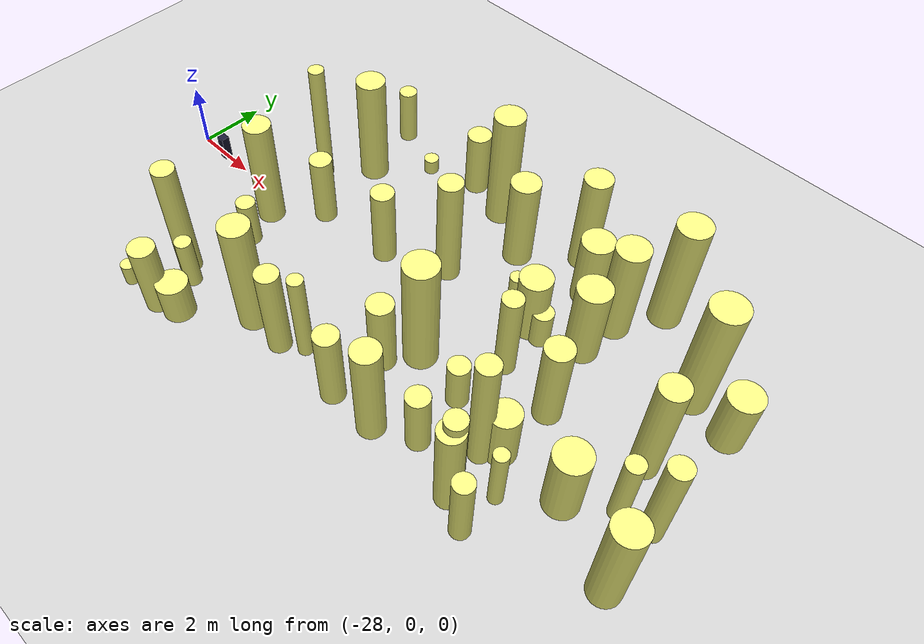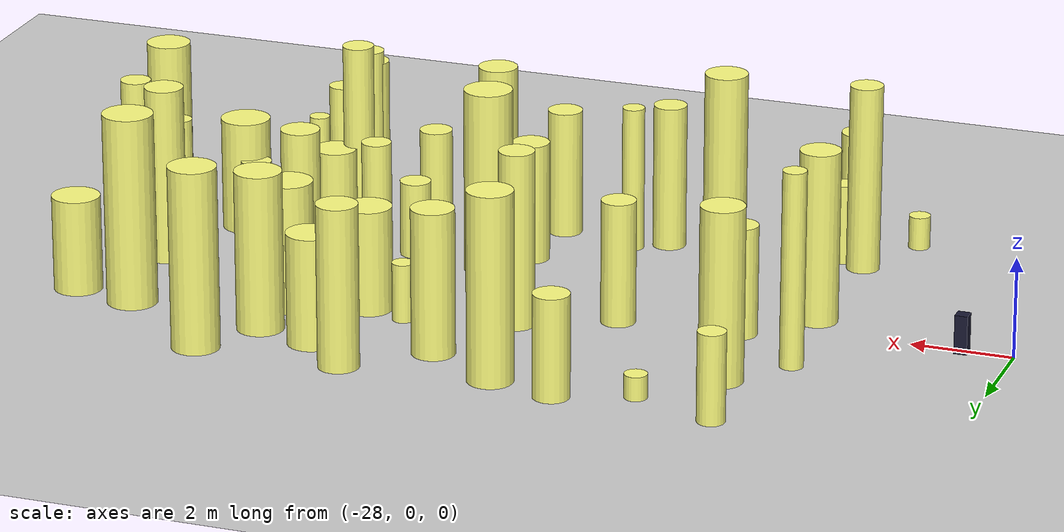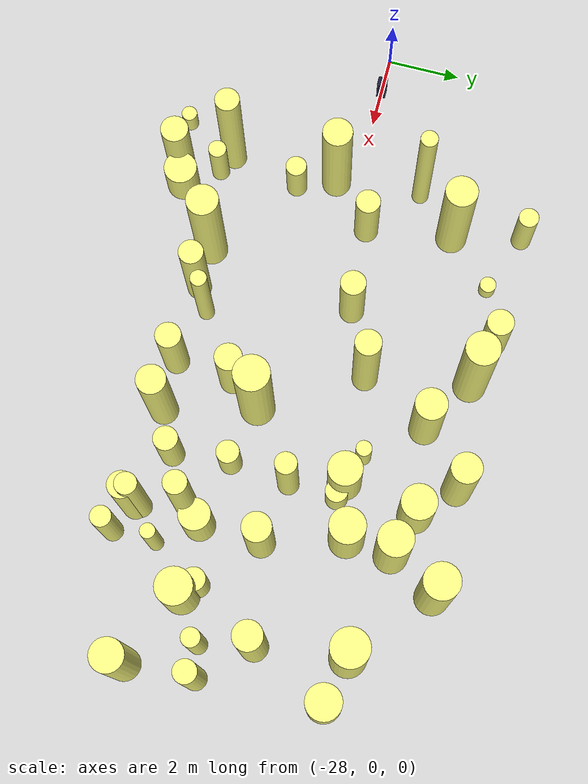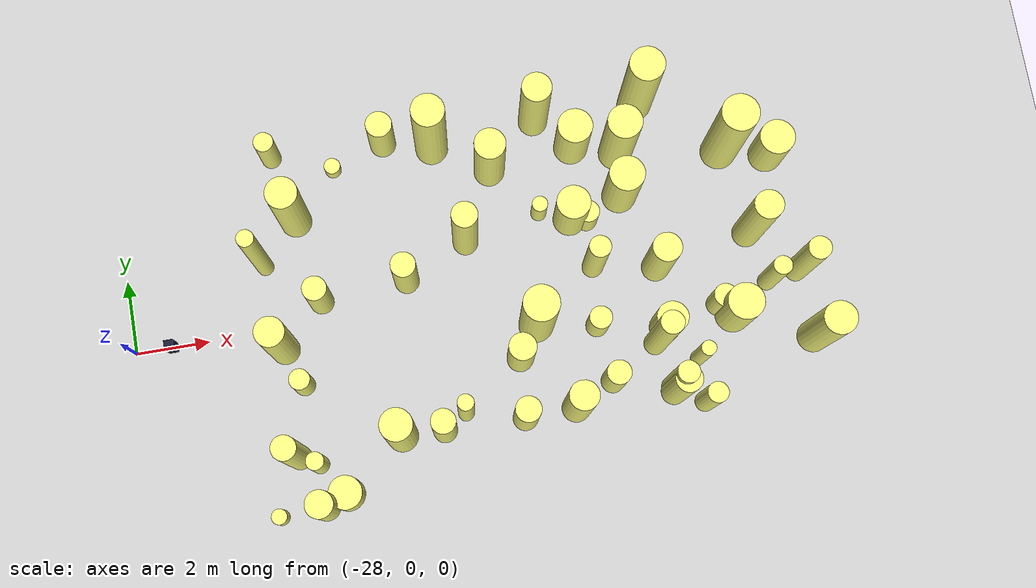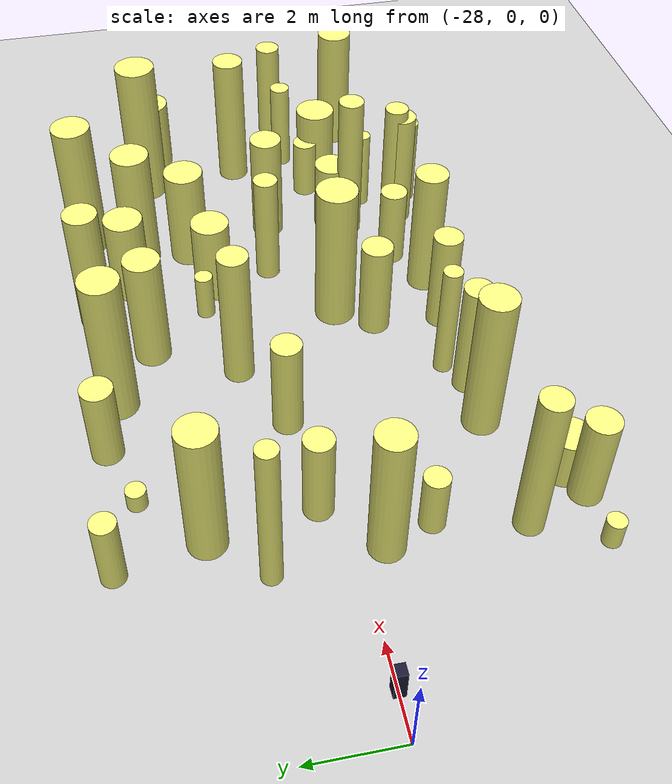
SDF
<sdf version="1.4">
 <world name="default">
  <include><uri>model://ground_plane</uri></include>
  <include><uri>model://sun</uri></include>
  <model name="forest">
   <static>true</static>
   <link name="cylinder1">
    <pose>-13.425324815442846 4.684051941880119 1.8073464388554377 0 0 0</pose>
    <visual name="visual">
     <geometry>
      <cylinder><radius>0.4679928004351601</radius><length>3.6146928777108753</length></cylinder>
     </geometry>
     <material>
      <ambient>0.6 0.6 0.6 1</ambient>
      <diffuse>1 1 0.5 1</diffuse>
      <specular>0 0 0</specular>
      <emissive>0 0 0 1</emissive>
     </material>
    </visual>
    <collision name="collision">
     <geometry>
      <cylinder><radius>0.4679928004351601</radius><length>3.6146928777108753</length></cylinder>
     </geometry>
     <max_contacts>0</max_contacts>
    </collision>
   </link>
   <link name="cylinder6">
    <pose>-23.200905450125763 2.9158026529113616 1.7294225878512632 0 0 0</pose>
    <visual name="visual">
     <geometry>
      <cylinder><radius>0.426228047189793</radius><length>3.4588451757025265</length></cylinder>
     </geometry>
     <material>
      <ambient>0.6 0.6 0.6 1</ambient>
      <diffuse>1 1 0.5 1</diffuse>
      <specular>0 0 0</specular>
      <emissive>0 0 0 1</emissive>
     </material>
    </visual>
    <collision name="collision">
     <geometry>
      <cylinder><radius>0.426228047189793</radius><length>3.4588451757025265</length></cylinder>
     </geometry>
     <max_contacts>0</max_contacts>
    </collision>
   </link>
   <link name="cylinder8">
    <pose>-20.079455899806838 -3.4347328216472315 1.4606840440277165 0 0 0</pose>
    <visual name="visual">
     <geometry>
      <cylinder><radius>0.32834331317839904</radius><length>2.921368088055433</length></cylinder>
     </geometry>
     <material>
      <ambient>0.6 0.6 0.6 1</ambient>
      <diffuse>1 1 0.5 1</diffuse>
      <specular>0 0 0</specular>
      <emissive>0 0 0 1</emissive>
     </material>
    </visual>
    <collision name="collision">
     <geometry>
      <cylinder><radius>0.32834331317839904</radius><length>2.921368088055433</length></cylinder>
     </geometry>
     <max_contacts>0</max_contacts>
    </collision>
   </link>
   <link name="cylinder9">
    <pose>-16.298758542996715 4.6578932224588705 1.6140198769826912 0 0 0</pose>
    <visual name="visual">
     <geometry>
      <cylinder><radius>0.3998894027435421</radius><length>3.2280397539653825</length></cylinder>
     </geometry>
     <material>
      <ambient>0.6 0.6 0.6 1</ambient>
      <diffuse>1 1 0.5 1</diffuse>
      <specular>0 0 0</specular>
      <emissive>0 0 0 1</emissive>
     </material>
    </visual>
    <collision name="collision">
     <geometry>
      <cylinder><radius>0.3998894027435421</radius><length>3.2280397539653825</length></cylinder>
     </geometry>
     <max_contacts>0</max_contacts>
    </collision>
   </link>
   <link name="cylinder10">
    <pose>-15.38589362293996 0.32492164306473637 1.4245857926261953 0 0 0</pose>
    <visual name="visual">
     <geometry>
      <cylinder><radius>0.2898272229201284</radius><length>2.8491715852523907</length></cylinder>
     </geometry>
     <material>
      <ambient>0.6 0.6 0.6 1</ambient>
      <diffuse>1 1 0.5 1</diffuse>
      <specular>0 0 0</specular>
      <emissive>0 0 0 1</emissive>
     </material>
    </visual>
    <collision name="collision">
     <geometry>
      <cylinder><radius>0.2898272229201284</radius><length>2.8491715852523907</length></cylinder>
     </geometry>
     <max_contacts>0</max_contacts>
    </collision>
   </link>
   <link name="cylinder11">
    <pose>-20.50939731660361 4.701523323956634 1.0200462039419955 0 0 0</pose>
    <visual name="visual">
     <geometry>
      <cylinder><radius>0.3564871261405954</radius><length>2.040092407883991</length></cylinder>
     </geometry>
     <material>
      <ambient>0.6 0.6 0.6 1</ambient>
      <diffuse>1 1 0.5 1</diffuse>
      <specular>0 0 0</specular>
      <emissive>0 0 0 1</emissive>
     </material>
    </visual>
    <collision name="collision">
     <geometry>
      <cylinder><radius>0.3564871261405954</radius><length>2.040092407883991</length></cylinder>
     </geometry>
     <max_contacts>0</max_contacts>
    </collision>
   </link>
   <link name="cylinder16">
    <pose>-15.3302228265768 1.6473909878124022 0.577696933725347 0 0 0</pose>
    <visual name="visual">
     <geometry>
      <cylinder><radius>0.29862722217275395</radius><length>1.155393867450694</length></cylinder>
     </geometry>
     <material>
      <ambient>0.6 0.6 0.6 1</ambient>
      <diffuse>1 1 0.5 1</diffuse>
      <specular>0 0 0</specular>
      <emissive>0 0 0 1</emissive>
     </material>
    </visual>
    <collision name="collision">
     <geometry>
      <cylinder><radius>0.29862722217275395</radius><length>1.155393867450694</length></cylinder>
     </geometry>
     <max_contacts>0</max_contacts>
    </collision>
   </link>
   <link name="cylinder17">
    <pose>-12.206962141053667 -1.255467921592385 0.7657628428371847 0 0 0</pose>
    <visual name="visual">
     <geometry>
      <cylinder><radius>0.30896001584463373</radius><length>1.5315256856743693</length></cylinder>
     </geometry>
     <material>
      <ambient>0.6 0.6 0.6 1</ambient>
      <diffuse>1 1 0.5 1</diffuse>
      <specular>0 0 0</specular>
      <emissive>0 0 0 1</emissive>
     </material>
    </visual>
    <collision name="collision">
     <geometry>
      <cylinder><radius>0.30896001584463373</radius><length>1.5315256856743693</length></cylinder>
     </geometry>
     <max_contacts>0</max_contacts>
    </collision>
   </link>
   <link name="cylinder19">
    <pose>-24.216951786448693 1.7955132381273398 1.9396257549318858 0 0 0</pose>
    <visual name="visual">
     <geometry>
      <cylinder><radius>0.2291035028655035</radius><length>3.8792515098637717</length></cylinder>
     </geometry>
     <material>
      <ambient>0.6 0.6 0.6 1</ambient>
      <diffuse>1 1 0.5 1</diffuse>
      <specular>0 0 0</specular>
      <emissive>0 0 0 1</emissive>
     </material>
    </visual>
    <collision name="collision">
     <geometry>
      <cylinder><radius>0.2291035028655035</radius><length>3.8792515098637717</length></cylinder>
     </geometry>
     <max_contacts>0</max_contacts>
    </collision>
   </link>
   <link name="cylinder25">
    <pose>-23.622724659389142 -1.602220369215365 0.7410076853481786 0 0 0</pose>
    <visual name="visual">
     <geometry>
      <cylinder><radius>0.2824663787287972</radius><length>1.4820153706963572</length></cylinder>
     </geometry>
     <material>
      <ambient>0.6 0.6 0.6 1</ambient>
      <diffuse>1 1 0.5 1</diffuse>
      <specular>0 0 0</specular>
      <emissive>0 0 0 1</emissive>
     </material>
    </visual>
    <collision name="collision">
     <geometry>
      <cylinder><radius>0.2824663787287972</radius><length>1.4820153706963572</length></cylinder>
     </geometry>
     <max_contacts>0</max_contacts>
    </collision>
   </link>
   <link name="cylinder27">
    <pose>-17.728571144775824 3.4578591734937145 1.4523116424741584 0 0 0</pose>
    <visual name="visual">
     <geometry>
      <cylinder><radius>0.42085033968195645</radius><length>2.904623284948317</length></cylinder>
     </geometry>
     <material>
      <ambient>0.6 0.6 0.6 1</ambient>
      <diffuse>1 1 0.5 1</diffuse>
      <specular>0 0 0</specular>
      <emissive>0 0 0 1</emissive>
     </material>
    </visual>
    <collision name="collision">
     <geometry>
      <cylinder><radius>0.42085033968195645</radius><length>2.904623284948317</length></cylinder>
     </geometry>
     <max_contacts>0</max_contacts>
    </collision>
   </link>
   <link name="cylinder32">
    <pose>-21.978491770533545 4.20373646093549 0.23649092039902228 0 0 0</pose>
    <visual name="visual">
     <geometry>
      <cylinder><radius>0.222380991836974</radius><length>0.47298184079804456</length></cylinder>
     </geometry>
     <material>
      <ambient>0.6 0.6 0.6 1</ambient>
      <diffuse>1 1 0.5 1</diffuse>
      <specular>0 0 0</specular>
      <emissive>0 0 0 1</emissive>
     </material>
    </visual>
    <collision name="collision">
     <geometry>
      <cylinder><radius>0.222380991836974</radius><length>0.47298184079804456</length></cylinder>
     </geometry>
     <max_contacts>0</max_contacts>
    </collision>
   </link>
   <link name="cylinder33">
    <pose>-23.621865823111143 4.806129667702864 0.8817907112433951 0 0 0</pose>
    <visual name="visual">
     <geometry>
      <cylinder><radius>0.2700935335505821</radius><length>1.7635814224867903</length></cylinder>
     </geometry>
     <material>
      <ambient>0.6 0.6 0.6 1</ambient>
      <diffuse>1 1 0.5 1</diffuse>
      <specular>0 0 0</specular>
      <emissive>0 0 0 1</emissive>
     </material>
    </visual>
    <collision name="collision">
     <geometry>
      <cylinder><radius>0.2700935335505821</radius><length>1.7635814224867903</length></cylinder>
     </geometry>
     <max_contacts>0</max_contacts>
    </collision>
   </link>
   <link name="cylinder39">
    <pose>-23.521100365539365 -4.924859397098956 1.1373021459224835 0 0 0</pose>
    <visual name="visual">
     <geometry>
      <cylinder><radius>0.3732747650827203</radius><length>2.274604291844967</length></cylinder>
     </geometry>
     <material>
      <ambient>0.6 0.6 0.6 1</ambient>
      <diffuse>1 1 0.5 1</diffuse>
      <specular>0 0 0</specular>
      <emissive>0 0 0 1</emissive>
     </material>
    </visual>
    <collision name="collision">
     <geometry>
      <cylinder><radius>0.3732747650827203</radius><length>2.274604291844967</length></cylinder>
     </geometry>
     <max_contacts>0</max_contacts>
    </collision>
   </link>
   <link name="cylinder41">
    <pose>-11.057983642045416 0.557611453082921 1.7652778801738367 0 0 0</pose>
    <visual name="visual">
     <geometry>
      <cylinder><radius>0.38303141651306294</radius><length>3.5305557603476734</length></cylinder>
     </geometry>
     <material>
      <ambient>0.6 0.6 0.6 1</ambient>
      <diffuse>1 1 0.5 1</diffuse>
      <specular>0 0 0</specular>
      <emissive>0 0 0 1</emissive>
     </material>
    </visual>
    <collision name="collision">
     <geometry>
      <cylinder><radius>0.38303141651306294</radius><length>3.5305557603476734</length></cylinder>
     </geometry>
     <max_contacts>0</max_contacts>
    </collision>
   </link>
   <link name="cylinder43">
    <pose>-13.041577894233514 -3.8120170278104326 1.181280168577643 0 0 0</pose>
    <visual name="visual">
     <geometry>
      <cylinder><radius>0.2761269920473245</radius><length>2.362560337155286</length></cylinder>
     </geometry>
     <material>
      <ambient>0.6 0.6 0.6 1</ambient>
      <diffuse>1 1 0.5 1</diffuse>
      <specular>0 0 0</specular>
      <emissive>0 0 0 1</emissive>
     </material>
    </visual>
    <collision name="collision">
     <geometry>
      <cylinder><radius>0.2761269920473245</radius><length>2.362560337155286</length></cylinder>
     </geometry>
     <max_contacts>0</max_contacts>
    </collision>
   </link>
   <link name="cylinder45">
    <pose>-13.818642532087095 -3.416232823194172 1.555280692205452 0 0 0</pose>
    <visual name="visual">
     <geometry>
      <cylinder><radius>0.3525645860288691</radius><length>3.110561384410904</length></cylinder>
     </geometry>
     <material>
      <ambient>0.6 0.6 0.6 1</ambient>
      <diffuse>1 1 0.5 1</diffuse>
      <specular>0 0 0</specular>
      <emissive>0 0 0 1</emissive>
     </material>
    </visual>
    <collision name="collision">
     <geometry>
      <cylinder><radius>0.3525645860288691</radius><length>3.110561384410904</length></cylinder>
     </geometry>
     <max_contacts>0</max_contacts>
    </collision>
   </link>
   <link name="cylinder50">
    <pose>-17.1818574459802 -1.0047567842385008 1.848393053407458 0 0 0</pose>
    <visual name="visual">
     <geometry>
      <cylinder><radius>0.47713528465152427</radius><length>3.696786106814916</length></cylinder>
     </geometry>
     <material>
      <ambient>0.6 0.6 0.6 1</ambient>
      <diffuse>1 1 0.5 1</diffuse>
      <specular>0 0 0</specular>
      <emissive>0 0 0 1</emissive>
     </material>
    </visual>
    <collision name="collision">
     <geometry>
      <cylinder><radius>0.47713528465152427</radius><length>3.696786106814916</length></cylinder>
     </geometry>
     <max_contacts>0</max_contacts>
    </collision>
   </link>
   <link name="cylinder51">
    <pose>-11.850265373017328 -1.6032519020101321 1.1351853709411586 0 0 0</pose>
    <visual name="visual">
     <geometry>
      <cylinder><radius>0.4878930821655726</radius><length>2.270370741882317</length></cylinder>
     </geometry>
     <material>
      <ambient>0.6 0.6 0.6 1</ambient>
      <diffuse>1 1 0.5 1</diffuse>
      <specular>0 0 0</specular>
      <emissive>0 0 0 1</emissive>
     </material>
    </visual>
    <collision name="collision">
     <geometry>
      <cylinder><radius>0.4878930821655726</radius><length>2.270370741882317</length></cylinder>
     </geometry>
     <max_contacts>0</max_contacts>
    </collision>
   </link>
   <link name="cylinder56">
    <pose>-24.002992067371743 -0.5582570251906125 1.725095024846579 0 0 0</pose>
    <visual name="visual">
     <geometry>
      <cylinder><radius>0.3972115370635241</radius><length>3.450190049693158</length></cylinder>
     </geometry>
     <material>
      <ambient>0.6 0.6 0.6 1</ambient>
      <diffuse>1 1 0.5 1</diffuse>
      <specular>0 0 0</specular>
      <emissive>0 0 0 1</emissive>
     </material>
    </visual>
    <collision name="collision">
     <geometry>
      <cylinder><radius>0.3972115370635241</radius><length>3.450190049693158</length></cylinder>
     </geometry>
     <max_contacts>0</max_contacts>
    </collision>
   </link>
   <link name="cylinder57">
    <pose>-19.448175965951524 -3.0598475423448757 1.4573336056326367 0 0 0</pose>
    <visual name="visual">
     <geometry>
      <cylinder><radius>0.21967929009451292</radius><length>2.9146672112652734</length></cylinder>
     </geometry>
     <material>
      <ambient>0.6 0.6 0.6 1</ambient>
      <diffuse>1 1 0.5 1</diffuse>
      <specular>0 0 0</specular>
      <emissive>0 0 0 1</emissive>
     </material>
    </visual>
    <collision name="collision">
     <geometry>
      <cylinder><radius>0.21967929009451292</radius><length>2.9146672112652734</length></cylinder>
     </geometry>
     <max_contacts>0</max_contacts>
    </collision>
   </link>
   <link name="cylinder58">
    <pose>-23.525010034781076 -3.781933235372583 0.8021762098089233 0 0 0</pose>
    <visual name="visual">
     <geometry>
      <cylinder><radius>0.243720162318943</radius><length>1.6043524196178467</length></cylinder>
     </geometry>
     <material>
      <ambient>0.6 0.6 0.6 1</ambient>
      <diffuse>1 1 0.5 1</diffuse>
      <specular>0 0 0</specular>
      <emissive>0 0 0 1</emissive>
     </material>
    </visual>
    <collision name="collision">
     <geometry>
      <cylinder><radius>0.243720162318943</radius><length>1.6043524196178467</length></cylinder>
     </geometry>
     <max_contacts>0</max_contacts>
    </collision>
   </link>
   <link name="cylinder59">
    <pose>-21.232558120910127 -3.394334431858775 1.8595915052587169 0 0 0</pose>
    <visual name="visual">
     <geometry>
      <cylinder><radius>0.42502489213666594</radius><length>3.7191830105174337</length></cylinder>
     </geometry>
     <material>
      <ambient>0.6 0.6 0.6 1</ambient>
      <diffuse>1 1 0.5 1</diffuse>
      <specular>0 0 0</specular>
      <emissive>0 0 0 1</emissive>
     </material>
    </visual>
    <collision name="collision">
     <geometry>
      <cylinder><radius>0.42502489213666594</radius><length>3.7191830105174337</length></cylinder>
     </geometry>
     <max_contacts>0</max_contacts>
    </collision>
   </link>
   <link name="cylinder61">
    <pose>-15.397605397323504 -2.857976929607119 1.0167248930479005 0 0 0</pose>
    <visual name="visual">
     <geometry><cylinder><radius>0.324773327944211</radius><length>2.033449786095801</length></cylinder></geometry>
     <material>
      <ambient>0.6 0.6 0.6 1</ambient>
      <diffuse>1 1 0.5 1</diffuse>
      <specular>0 0 0</specular>
      <emissive>0 0 0 1</emissive>
     </material>
    </visual>
    <collision name="collision">
     <geometry><cylinder><radius>0.324773327944211</radius><length>2.033449786095801</length></cylinder></geometry>
     <max_contacts>0</max_contacts>
    </collision>
   </link>
   <link name="cylinder64">
    <pose>-22.830699454876473 0.5837023733524882 1.104139831678299 0 0 0</pose>
    <visual name="visual">
     <geometry>
      <cylinder><radius>0.3294324136540876</radius><length>2.208279663356598</length></cylinder>
     </geometry>
     <material>
      <ambient>0.6 0.6 0.6 1</ambient>
      <diffuse>1 1 0.5 1</diffuse>
      <specular>0 0 0</specular>
      <emissive>0 0 0 1</emissive>
     </material>
    </visual>
    <collision name="collision">
     <geometry>
      <cylinder><radius>0.3294324136540876</radius><length>2.208279663356598</length></cylinder>
     </geometry>
     <max_contacts>0</max_contacts>
    </collision>
   </link>
   <link name="cylinder72">
    <pose>-20.458801583910258 0.7692911696149451 1.2327098278540207 0 0 0</pose>
    <visual name="visual">
     <geometry>
      <cylinder><radius>0.3380424176040393</radius><length>2.4654196557080414</length></cylinder>
     </geometry>
     <material>
      <ambient>0.6 0.6 0.6 1</ambient>
      <diffuse>1 1 0.5 1</diffuse>
      <specular>0 0 0</specular>
      <emissive>0 0 0 1</emissive>
     </material>
    </visual>
    <collision name="collision">
     <geometry>
      <cylinder><radius>0.3380424176040393</radius><length>2.4654196557080414</length></cylinder>
     </geometry>
     <max_contacts>0</max_contacts>
    </collision>
   </link>
   <link name="cylinder73">
    <pose>-10.09665070492991 2.6509644733770275 0.9523771017375646 0 0 0</pose>
    <visual name="visual">
     <geometry>
      <cylinder><radius>0.47314142101327167</radius><length>1.9047542034751292</length></cylinder>
     </geometry>
     <material>
      <ambient>0.6 0.6 0.6 1</ambient>
      <diffuse>1 1 0.5 1</diffuse>
      <specular>0 0 0</specular>
      <emissive>0 0 0 1</emissive>
     </material>
    </visual>
    <collision name="collision">
     <geometry>
      <cylinder><radius>0.47314142101327167</radius><length>1.9047542034751292</length></cylinder>
     </geometry>
     <max_contacts>0</max_contacts>
    </collision>
   </link>
   <link name="cylinder74">
    <pose>-22.902636011221826 -4.685812752264552 0.6060730089021905 0 0 0</pose>
    <visual name="visual">
     <geometry>
      <cylinder><radius>0.45120756575644533</radius><length>1.212146017804381</length></cylinder>
     </geometry>
     <material>
      <ambient>0.6 0.6 0.6 1</ambient>
      <diffuse>1 1 0.5 1</diffuse>
      <specular>0 0 0</specular>
      <emissive>0 0 0 1</emissive>
     </material>
    </visual>
    <collision name="collision">
     <geometry>
      <cylinder><radius>0.45120756575644533</radius><length>1.212146017804381</length></cylinder>
     </geometry>
     <max_contacts>0</max_contacts>
    </collision>
   </link>
   <link name="cylinder83">
    <pose>-15.7733552257381 1.7503747609258724 1.0477441582251714 0 0 0</pose>
    <visual name="visual">
     <geometry><cylinder><radius>0.454918860878243</radius><length>2.095488316450343</length></cylinder></geometry>
     <material>
      <ambient>0.6 0.6 0.6 1</ambient>
      <diffuse>1 1 0.5 1</diffuse>
      <specular>0 0 0</specular>
      <emissive>0 0 0 1</emissive>
     </material>
    </visual>
    <collision name="collision">
     <geometry><cylinder><radius>0.454918860878243</radius><length>2.095488316450343</length></cylinder></geometry>
     <max_contacts>0</max_contacts>
    </collision>
   </link>
   <link name="cylinder84">
    <pose>-16.501211211872214 -3.4137045147501643 1.6508333132319701 0 0 0</pose>
    <visual name="visual">
     <geometry>
      <cylinder><radius>0.389337023114885</radius><length>3.3016666264639403</length></cylinder>
     </geometry>
     <material>
      <ambient>0.6 0.6 0.6 1</ambient>
      <diffuse>1 1 0.5 1</diffuse>
      <specular>0 0 0</specular>
      <emissive>0 0 0 1</emissive>
     </material>
    </visual>
    <collision name="collision">
     <geometry>
      <cylinder><radius>0.389337023114885</radius><length>3.3016666264639403</length></cylinder>
     </geometry>
     <max_contacts>0</max_contacts>
    </collision>
   </link>
   <link name="cylinder87">
    <pose>-24.02970419296078 -3.509284494731486 1.8853819222239876 0 0 0</pose>
    <visual name="visual">
     <geometry>
      <cylinder><radius>0.32515894225755215</radius><length>3.770763844447975</length></cylinder>
     </geometry>
     <material>
      <ambient>0.6 0.6 0.6 1</ambient>
      <diffuse>1 1 0.5 1</diffuse>
      <specular>0 0 0</specular>
      <emissive>0 0 0 1</emissive>
     </material>
    </visual>
    <collision name="collision">
     <geometry>
      <cylinder><radius>0.32515894225755215</radius><length>3.770763844447975</length></cylinder>
     </geometry>
     <max_contacts>0</max_contacts>
    </collision>
   </link>
   <link name="cylinder91">
    <pose>-17.76143867000688 -1.8352570421769379 1.2053678714570832 0 0 0</pose>
    <visual name="visual">
     <geometry>
      <cylinder><radius>0.3671456159528772</radius><length>2.4107357429141665</length></cylinder>
     </geometry>
     <material>
      <ambient>0.6 0.6 0.6 1</ambient>
      <diffuse>1 1 0.5 1</diffuse>
      <specular>0 0 0</specular>
      <emissive>0 0 0 1</emissive>
     </material>
    </visual>
    <collision name="collision">
     <geometry>
      <cylinder><radius>0.3671456159528772</radius><length>2.4107357429141665</length></cylinder>
     </geometry>
     <max_contacts>0</max_contacts>
    </collision>
   </link>
   <link name="cylinder92">
    <pose>-13.68525183723232 0.03388143637880514 1.4030780647185188 0 0 0</pose>
    <visual name="visual">
     <geometry>
      <cylinder><radius>0.38638744114960155</radius><length>2.8061561294370376</length></cylinder>
     </geometry>
     <material>
      <ambient>0.6 0.6 0.6 1</ambient>
      <diffuse>1 1 0.5 1</diffuse>
      <specular>0 0 0</specular>
      <emissive>0 0 0 1</emissive>
     </material>
    </visual>
    <collision name="collision">
     <geometry>
      <cylinder><radius>0.38638744114960155</radius><length>2.8061561294370376</length></cylinder>
     </geometry>
     <max_contacts>0</max_contacts>
    </collision>
   </link>
   <link name="cylinder100">
    <pose>-13.741486160729133 -1.645256936407966 0.9245517423813269 0 0 0</pose>
    <visual name="visual">
     <geometry>
      <cylinder><radius>0.4214252351995127</radius><length>1.8491034847626537</length></cylinder>
     </geometry>
     <material>
      <ambient>0.6 0.6 0.6 1</ambient>
      <diffuse>1 1 0.5 1</diffuse>
      <specular>0 0 0</specular>
      <emissive>0 0 0 1</emissive>
     </material>
    </visual>
    <collision name="collision">
     <geometry>
      <cylinder><radius>0.4214252351995127</radius><length>1.8491034847626537</length></cylinder>
     </geometry>
     <max_contacts>0</max_contacts>
    </collision>
   </link>
   <link name="cylinder101">
    <pose>-13.838369265341004 -3.2679941641734924 1.6877404770099445 0 0 0</pose>
    <visual name="visual">
     <geometry>
      <cylinder><radius>0.2874423811325399</radius><length>3.375480954019889</length></cylinder>
     </geometry>
     <material>
      <ambient>0.6 0.6 0.6 1</ambient>
      <diffuse>1 1 0.5 1</diffuse>
      <specular>0 0 0</specular>
      <emissive>0 0 0 1</emissive>
     </material>
    </visual>
    <collision name="collision">
     <geometry>
      <cylinder><radius>0.2874423811325399</radius><length>3.375480954019889</length></cylinder>
     </geometry>
     <max_contacts>0</max_contacts>
    </collision>
   </link>
   <link name="cylinder106">
    <pose>-16.585447565336725 2.0584373386107844 0.5817090636928857 0 0 0</pose>
    <visual name="visual">
     <geometry>
      <cylinder><radius>0.2132567178168655</radius><length>1.1634181273857713</length></cylinder>
     </geometry>
     <material>
      <ambient>0.6 0.6 0.6 1</ambient>
      <diffuse>1 1 0.5 1</diffuse>
      <specular>0 0 0</specular>
      <emissive>0 0 0 1</emissive>
     </material>
    </visual>
    <collision name="collision">
     <geometry>
      <cylinder><radius>0.2132567178168655</radius><length>1.1634181273857713</length></cylinder>
     </geometry>
     <max_contacts>0</max_contacts>
    </collision>
   </link>
   <link name="cylinder109">
    <pose>-9.810269137311256 -2.550817204593719 1.653471142228674 0 0 0</pose>
    <visual name="visual">
     <geometry>
      <cylinder><radius>0.43501574180293484</radius><length>3.306942284457348</length></cylinder>
     </geometry>
     <material>
      <ambient>0.6 0.6 0.6 1</ambient>
      <diffuse>1 1 0.5 1</diffuse>
      <specular>0 0 0</specular>
      <emissive>0 0 0 1</emissive>
     </material>
    </visual>
    <collision name="collision">
     <geometry>
      <cylinder><radius>0.43501574180293484</radius><length>3.306942284457348</length></cylinder>
     </geometry>
     <max_contacts>0</max_contacts>
    </collision>
   </link>
   <link name="cylinder112">
    <pose>-9.913201672796745 -0.6825788593884141 1.5661880873788612 0 0 0</pose>
    <visual name="visual">
     <geometry>
      <cylinder><radius>0.3035136563365975</radius><length>3.1323761747577223</length></cylinder>
     </geometry>
     <material>
      <ambient>0.6 0.6 0.6 1</ambient>
      <diffuse>1 1 0.5 1</diffuse>
      <specular>0 0 0</specular>
      <emissive>0 0 0 1</emissive>
     </material>
    </visual>
    <collision name="collision">
     <geometry>
      <cylinder><radius>0.3035136563365975</radius><length>3.1323761747577223</length></cylinder>
     </geometry>
     <max_contacts>0</max_contacts>
    </collision>
   </link>
   <link name="cylinder114">
    <pose>-10.754448205569151 -0.8504814563946645 1.1821459438124844 0 0 0</pose>
    <visual name="visual">
     <geometry>
      <cylinder><radius>0.2505117791626421</radius><length>2.364291887624969</length></cylinder>
     </geometry>
     <material>
      <ambient>0.6 0.6 0.6 1</ambient>
      <diffuse>1 1 0.5 1</diffuse>
      <specular>0 0 0</specular>
      <emissive>0 0 0 1</emissive>
     </material>
    </visual>
    <collision name="collision">
     <geometry>
      <cylinder><radius>0.2505117791626421</radius><length>2.364291887624969</length></cylinder>
     </geometry>
     <max_contacts>0</max_contacts>
    </collision>
   </link>
   <link name="cylinder122">
    <pose>-13.013728693071885 -2.6263772965597108 1.0526671681549826 0 0 0</pose>
    <visual name="visual">
     <geometry>
      <cylinder><radius>0.20106926788099283</radius><length>2.1053343363099652</length></cylinder>
     </geometry>
     <material>
      <ambient>0.6 0.6 0.6 1</ambient>
      <diffuse>1 1 0.5 1</diffuse>
      <specular>0 0 0</specular>
      <emissive>0 0 0 1</emissive>
     </material>
    </visual>
    <collision name="collision">
     <geometry>
      <cylinder><radius>0.20106926788099283</radius><length>2.1053343363099652</length></cylinder>
     </geometry>
     <max_contacts>0</max_contacts>
    </collision>
   </link>
   <link name="cylinder124">
    <pose>-24.743620992902997 -4.997759308164297 0.33232021158934055 0 0 0</pose>
    <visual name="visual">
     <geometry>
      <cylinder><radius>0.21217977376866623</radius><length>0.6646404231786811</length></cylinder>
     </geometry>
     <material>
      <ambient>0.6 0.6 0.6 1</ambient>
      <diffuse>1 1 0.5 1</diffuse>
      <specular>0 0 0</specular>
      <emissive>0 0 0 1</emissive>
     </material>
    </visual>
    <collision name="collision">
     <geometry>
      <cylinder><radius>0.21217977376866623</radius><length>0.6646404231786811</length></cylinder>
     </geometry>
     <max_contacts>0</max_contacts>
    </collision>
   </link>
   <link name="cylinder125">
    <pose>-14.312874627995686 2.172055565400197 1.2851475706319104 0 0 0</pose>
    <visual name="visual">
     <geometry>
      <cylinder><radius>0.47322270678856465</radius><length>2.570295141263821</length></cylinder>
     </geometry>
     <material>
      <ambient>0.6 0.6 0.6 1</ambient>
      <diffuse>1 1 0.5 1</diffuse>
      <specular>0 0 0</specular>
      <emissive>0 0 0 1</emissive>
     </material>
    </visual>
    <collision name="collision">
     <geometry>
      <cylinder><radius>0.47322270678856465</radius><length>2.570295141263821</length></cylinder>
     </geometry>
     <max_contacts>0</max_contacts>
    </collision>
   </link>
   <link name="cylinder126">
    <pose>-14.083995754924604 -2.043343173944278 1.945549304936906 0 0 0</pose>
    <visual name="visual">
     <geometry>
      <cylinder><radius>0.30608283948900583</radius><length>3.891098609873812</length></cylinder>
     </geometry>
     <material>
      <ambient>0.6 0.6 0.6 1</ambient>
      <diffuse>1 1 0.5 1</diffuse>
      <specular>0 0 0</specular>
      <emissive>0 0 0 1</emissive>
     </material>
    </visual>
    <collision name="collision">
     <geometry>
      <cylinder><radius>0.30608283948900583</radius><length>3.891098609873812</length></cylinder>
     </geometry>
     <max_contacts>0</max_contacts>
    </collision>
   </link>
   <link name="cylinder129">
    <pose>-11.36849474409985 2.962143639563294 1.913573928175372 0 0 0</pose>
    <visual name="visual">
     <geometry>
      <cylinder><radius>0.49356343569156996</radius><length>3.827147856350744</length></cylinder>
     </geometry>
     <material>
      <ambient>0.6 0.6 0.6 1</ambient>
      <diffuse>1 1 0.5 1</diffuse>
      <specular>0 0 0</specular>
      <emissive>0 0 0 1</emissive>
     </material>
    </visual>
    <collision name="collision">
     <geometry>
      <cylinder><radius>0.49356343569156996</radius><length>3.827147856350744</length></cylinder>
     </geometry>
     <max_contacts>0</max_contacts>
    </collision>
   </link>
   <link name="cylinder131">
    <pose>-19.192696360058612 4.355254018976581 1.8779425176420865 0 0 0</pose>
    <visual name="visual">
     <geometry>
      <cylinder><radius>0.4467650536340266</radius><length>3.755885035284173</length></cylinder>
     </geometry>
     <material>
      <ambient>0.6 0.6 0.6 1</ambient>
      <diffuse>1 1 0.5 1</diffuse>
      <specular>0 0 0</specular>
      <emissive>0 0 0 1</emissive>
     </material>
    </visual>
    <collision name="collision">
     <geometry>
      <cylinder><radius>0.4467650536340266</radius><length>3.755885035284173</length></cylinder>
     </geometry>
     <max_contacts>0</max_contacts>
    </collision>
   </link>
   <link name="cylinder133">
    <pose>-14.202281696572571 3.392926412358152 1.587578639980658 0 0 0</pose>
    <visual name="visual">
     <geometry>
      <cylinder><radius>0.4607950821973453</radius><length>3.175157279961316</length></cylinder>
     </geometry>
     <material>
      <ambient>0.6 0.6 0.6 1</ambient>
      <diffuse>1 1 0.5 1</diffuse>
      <specular>0 0 0</specular>
      <emissive>0 0 0 1</emissive>
     </material>
    </visual>
    <collision name="collision">
     <geometry>
      <cylinder><radius>0.4607950821973453</radius><length>3.175157279961316</length></cylinder>
     </geometry>
     <max_contacts>0</max_contacts>
    </collision>
   </link>
   <link name="cylinder136">
    <pose>-15.554894804234925 -1.2977463618114227 0.7588385940948581 0 0 0</pose>
    <visual name="visual">
     <geometry>
      <cylinder><radius>0.306184171084637</radius><length>1.5176771881897162</length></cylinder>
     </geometry>
     <material>
      <ambient>0.6 0.6 0.6 1</ambient>
      <diffuse>1 1 0.5 1</diffuse>
      <specular>0 0 0</specular>
      <emissive>0 0 0 1</emissive>
     </material>
    </visual>
    <collision name="collision">
     <geometry>
      <cylinder><radius>0.306184171084637</radius><length>1.5176771881897162</length></cylinder>
     </geometry>
     <max_contacts>0</max_contacts>
    </collision>
   </link>
   <link name="cylinder138">
    <pose>-17.896416769380338 -3.454340794187182 1.2750859199006421 0 0 0</pose>
    <visual name="visual">
     <geometry>
      <cylinder><radius>0.3438132327425877</radius><length>2.5501718398012843</length></cylinder>
     </geometry>
     <material>
      <ambient>0.6 0.6 0.6 1</ambient>
      <diffuse>1 1 0.5 1</diffuse>
      <specular>0 0 0</specular>
      <emissive>0 0 0 1</emissive>
     </material>
    </visual>
    <collision name="collision">
     <geometry>
      <cylinder><radius>0.3438132327425877</radius><length>2.5501718398012843</length></cylinder>
     </geometry>
     <max_contacts>0</max_contacts>
    </collision>
   </link>
   <link name="cylinder146">
    <pose>-15.388340482982239 3.7523892416243 1.1108355216042898 0 0 0</pose>
    <visual name="visual">
     <geometry>
      <cylinder><radius>0.46894804844084315</radius><length>2.2216710432085796</length></cylinder>
     </geometry>
     <material>
      <ambient>0.6 0.6 0.6 1</ambient>
      <diffuse>1 1 0.5 1</diffuse>
      <specular>0 0 0</specular>
      <emissive>0 0 0 1</emissive>
     </material>
    </visual>
    <collision name="collision">
     <geometry>
      <cylinder><radius>0.46894804844084315</radius><length>2.2216710432085796</length></cylinder>
     </geometry>
     <max_contacts>0</max_contacts>
    </collision>
   </link>
   <link name="cylinder149">
    <pose>-18.704164704738325 1.575617904454699 1.7555156341756986 0 0 0</pose>
    <visual name="visual">
     <geometry>
      <cylinder><radius>0.34729364932019713</radius><length>3.511031268351397</length></cylinder>
     </geometry>
     <material>
      <ambient>0.6 0.6 0.6 1</ambient>
      <diffuse>1 1 0.5 1</diffuse>
      <specular>0 0 0</specular>
      <emissive>0 0 0 1</emissive>
     </material>
    </visual>
    <collision name="collision">
     <geometry>
      <cylinder><radius>0.34729364932019713</radius><length>3.511031268351397</length></cylinder>
     </geometry>
     <max_contacts>0</max_contacts>
    </collision>
   </link>
   <link name="cube3">
    <pose>-27.0 0.0 0.25 0 0 0</pose>
    <visual name="visual">
     <geometry><box><size>0.25 0.25 1.0</size></box></geometry>
     <material>
      <ambient>0.1 0.1 0.1 1</ambient>
      <diffuse>0.1 0.1 0.2 1</diffuse>
      <specular>0 0 0</specular>
      <emissive>0 0 0 1</emissive>
     </material>
    </visual>
    <collision name="collision">
     <geometry><box><size>0.25 0.25 1.0</size></box></geometry>
     <max_contacts>0</max_contacts>
    </collision>
   </link>
  </model>
 </world>
</sdf>
